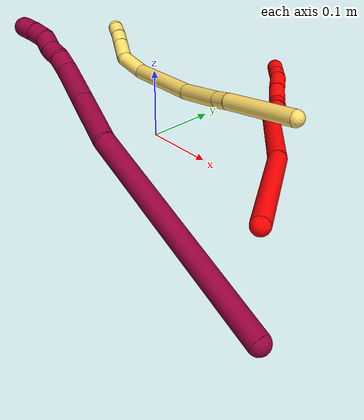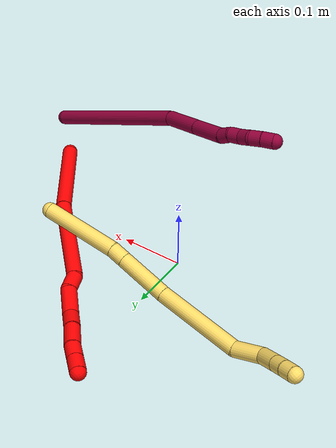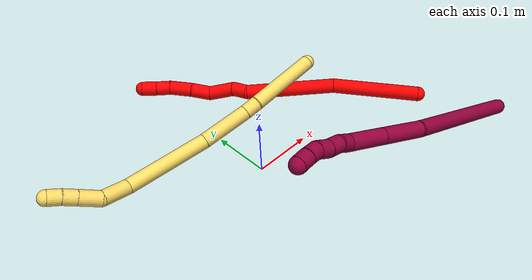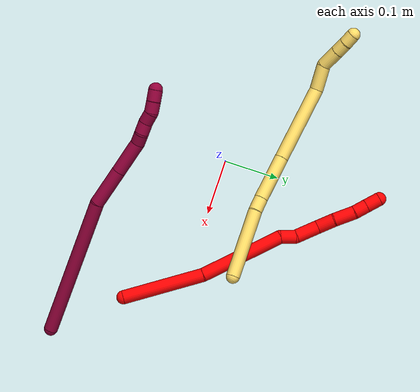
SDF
<sdf version="1.7">
 <world name="default">
  <model name="2">
   <static>0</static>
   <link name="2">
    <collision name="collision-cylinder-e_1_1_4">
     <pose>-0.033554 0.03846 0.053994 -0.618941 -0.46857 0.15233</pose>
     <geometry><cylinder><radius>0.0125</radius><length>0.148599</length></cylinder></geometry>
     <surface>
      <friction><ode><mu>1.16</mu><mu2>1.16</mu2><slip1>0</slip1><slip2>0</slip2></ode></friction>
      <contact><ode><kp>1e+06</kp><kd>1</kd><max_vel>0</max_vel><min_depth>0.001</min_depth></ode></contact>
     </surface>
    </collision>
    <visual name="visual-cylinder-e_1_1_4">
     <pose>-0.033554 0.03846 0.053994 -0.618941 -0.46857 0.15233</pose>
     <geometry><cylinder><radius>0.0125</radius><length>0.148599</length></cylinder></geometry>
     <material><ambient>1 0 0 1</ambient></material>
    </visual>
    <collision name="collision-cylinder-e_2_4_5">
     <pose>-0.099457 0.129042 0.155318 -0.833537 -0.4307 0.193073</pose>
     <geometry><cylinder><radius>0.0125</radius><length>0.154961</length></cylinder></geometry>
     <surface>
      <friction><ode><mu>1.16</mu><mu2>1.16</mu2><slip1>0</slip1><slip2>0</slip2></ode></friction>
      <contact><ode><kp>1e+06</kp><kd>1</kd><max_vel>0</max_vel><min_depth>0.001</min_depth></ode></contact>
     </surface>
    </collision>
    <visual name="visual-cylinder-e_2_4_5">
     <pose>-0.099457 0.129042 0.155318 -0.833537 -0.4307 0.193073</pose>
     <geometry><cylinder><radius>0.0125</radius><length>0.154961</length></cylinder></geometry>
     <material><ambient>1 0 0 1</ambient></material>
    </visual>
    <collision name="collision-cylinder-e_3_5_6">
     <pose>-0.136293 0.185952 0.215072 -0.367914 -0.325043 0.060997</pose>
     <geometry><cylinder><radius>0.0125</radius><length>0.028102</length></cylinder></geometry>
     <surface>
      <friction><ode><mu>1.16</mu><mu2>1.16</mu2><slip1>0</slip1><slip2>0</slip2></ode></friction>
      <contact><ode><kp>1e+06</kp><kd>1</kd><max_vel>0</max_vel><min_depth>0.001</min_depth></ode></contact>
     </surface>
    </collision>
    <visual name="visual-cylinder-e_3_5_6">
     <pose>-0.136293 0.185952 0.215072 -0.367914 -0.325043 0.060997</pose>
     <geometry><cylinder><radius>0.0125</radius><length>0.028102</length></cylinder></geometry>
     <material><ambient>1 0 0 1</ambient></material>
    </visual>
    <collision name="collision-cylinder-e_4_6_7">
     <pose>-0.14634 0.206564 0.242648 -0.807063 -0.248538 0.106565</pose>
     <geometry><cylinder><radius>0.0125</radius><length>0.045203</length></cylinder></geometry>
     <surface>
      <friction><ode><mu>1.16</mu><mu2>1.16</mu2><slip1>0</slip1><slip2>0</slip2></ode></friction>
      <contact><ode><kp>1e+06</kp><kd>1</kd><max_vel>0</max_vel><min_depth>0.001</min_depth></ode></contact>
     </surface>
    </collision>
    <visual name="visual-cylinder-e_4_6_7">
     <pose>-0.14634 0.206564 0.242648 -0.807063 -0.248538 0.106565</pose>
     <geometry><cylinder><radius>0.0125</radius><length>0.045203</length></cylinder></geometry>
     <material><ambient>1 0 0 1</ambient></material>
    </visual>
    <collision name="collision-cylinder-e_5_7_8">
     <pose>-0.163159 0.23093 0.267495 -0.7223 -0.716738 0.281076</pose>
     <geometry><cylinder><radius>0.0125</radius><length>0.034279</length></cylinder></geometry>
     <surface>
      <friction><ode><mu>1.16</mu><mu2>1.16</mu2><slip1>0</slip1><slip2>0</slip2></ode></friction>
      <contact><ode><kp>1e+06</kp><kd>1</kd><max_vel>0</max_vel><min_depth>0.001</min_depth></ode></contact>
     </surface>
    </collision>
    <visual name="visual-cylinder-e_5_7_8">
     <pose>-0.163159 0.23093 0.267495 -0.7223 -0.716738 0.281076</pose>
     <geometry><cylinder><radius>0.0125</radius><length>0.034279</length></cylinder></geometry>
     <material><ambient>1 0 0 1</ambient></material>
    </visual>
    <collision name="collision-cylinder-e_6_8_9">
     <pose>-0.184611 0.249858 0.289684 -0.693451 -0.560295 0.207171</pose>
     <geometry><cylinder><radius>0.0125</radius><length>0.038356</length></cylinder></geometry>
     <surface>
      <friction><ode><mu>1.16</mu><mu2>1.16</mu2><slip1>0</slip1><slip2>0</slip2></ode></friction>
      <contact><ode><kp>1e+06</kp><kd>1</kd><max_vel>0</max_vel><min_depth>0.001</min_depth></ode></contact>
     </surface>
    </collision>
    <visual name="visual-cylinder-e_6_8_9">
     <pose>-0.184611 0.249858 0.289684 -0.693451 -0.560295 0.207171</pose>
     <geometry><cylinder><radius>0.0125</radius><length>0.038356</length></cylinder></geometry>
     <material><ambient>1 0 0 1</ambient></material>
    </visual>
    <collision name="collision-cylinder-e_7_9_10">
     <pose>-0.20051 0.268487 0.309075 -0.874193 -0.488063 0.231638</pose>
     <geometry><cylinder><radius>0.0125</radius><length>0.024342</length></cylinder></geometry>
     <surface>
      <friction><ode><mu>1.16</mu><mu2>1.16</mu2><slip1>0</slip1><slip2>0</slip2></ode></friction>
      <contact><ode><kp>1e+06</kp><kd>1</kd><max_vel>0</max_vel><min_depth>0.001</min_depth></ode></contact>
     </surface>
    </collision>
    <visual name="visual-cylinder-e_7_9_10">
     <pose>-0.20051 0.268487 0.309075 -0.874193 -0.488063 0.231638</pose>
     <geometry><cylinder><radius>0.0125</radius><length>0.024342</length></cylinder></geometry>
     <material><ambient>1 0 0 1</ambient></material>
    </visual>
    <collision name="collision-cylinder-e_8_10_2">
     <pose>-0.212886 0.285257 0.323315 -0.859795 -0.535092 0.250053</pose>
     <geometry><cylinder><radius>0.0125</radius><length>0.026157</length></cylinder></geometry>
     <surface>
      <friction><ode><mu>1.16</mu><mu2>1.16</mu2><slip1>0</slip1><slip2>0</slip2></ode></friction>
      <contact><ode><kp>1e+06</kp><kd>1</kd><max_vel>0</max_vel><min_depth>0.001</min_depth></ode></contact>
     </surface>
    </collision>
    <visual name="visual-cylinder-e_8_10_2">
     <pose>-0.212886 0.285257 0.323315 -0.859795 -0.535092 0.250053</pose>
     <geometry><cylinder><radius>0.0125</radius><length>0.026157</length></cylinder></geometry>
     <material><ambient>1 0 0 1</ambient></material>
    </visual>
    <collision name="collision-sphere-2">
     <pose>-0.219555 0.293782 0.330656 0 -0 0</pose>
     <geometry><sphere><radius>0.0125</radius></sphere></geometry>
     <surface>
      <friction><ode><mu>1.16</mu><mu2>1.16</mu2><slip1>0</slip1><slip2>0</slip2></ode></friction>
      <contact><ode><kp>1e+06</kp><kd>1</kd><max_vel>0</max_vel><min_depth>0.001</min_depth></ode></contact>
     </surface>
    </collision>
    <visual name="visual-sphere-2">
     <pose>-0.219555 0.293782 0.330656 0 -0 0</pose>
     <geometry><sphere><radius>0.0125</radius></sphere></geometry>
     <material><ambient>1 0 0 1</ambient></material>
    </visual>
    <collision name="collision-sphere-10">
     <pose>-0.206217 0.276733 0.315973 0 -0 0</pose>
     <geometry><sphere><radius>0.0125</radius></sphere></geometry>
     <surface>
      <friction><ode><mu>1.16</mu><mu2>1.16</mu2><slip1>0</slip1><slip2>0</slip2></ode></friction>
      <contact><ode><kp>1e+06</kp><kd>1</kd><max_vel>0</max_vel><min_depth>0.001</min_depth></ode></contact>
     </surface>
    </collision>
    <visual name="visual-sphere-10">
     <pose>-0.206217 0.276733 0.315973 0 -0 0</pose>
     <geometry><sphere><radius>0.0125</radius></sphere></geometry>
     <material><ambient>1 0 0 1</ambient></material>
    </visual>
    <collision name="collision-sphere-9">
     <pose>-0.194803 0.260242 0.302178 0 -0 0</pose>
     <geometry><sphere><radius>0.0125</radius></sphere></geometry>
     <surface>
      <friction><ode><mu>1.16</mu><mu2>1.16</mu2><slip1>0</slip1><slip2>0</slip2></ode></friction>
      <contact><ode><kp>1e+06</kp><kd>1</kd><max_vel>0</max_vel><min_depth>0.001</min_depth></ode></contact>
     </surface>
    </collision>
    <visual name="visual-sphere-9">
     <pose>-0.194803 0.260242 0.302178 0 -0 0</pose>
     <geometry><sphere><radius>0.0125</radius></sphere></geometry>
     <material><ambient>1 0 0 1</ambient></material>
    </visual>
    <collision name="collision-sphere-4">
     <pose>-0.067109 0.076921 0.107987 0 -0 0</pose>
     <geometry><sphere><radius>0.0125</radius></sphere></geometry>
     <surface>
      <friction><ode><mu>1.16</mu><mu2>1.16</mu2><slip1>0</slip1><slip2>0</slip2></ode></friction>
      <contact><ode><kp>1e+06</kp><kd>1</kd><max_vel>0</max_vel><min_depth>0.001</min_depth></ode></contact>
     </surface>
    </collision>
    <visual name="visual-sphere-4">
     <pose>-0.067109 0.076921 0.107987 0 -0 0</pose>
     <geometry><sphere><radius>0.0125</radius></sphere></geometry>
     <material><ambient>1 0 0 1</ambient></material>
    </visual>
    <collision name="collision-sphere-1">
     <geometry><sphere><radius>0.0125</radius></sphere></geometry>
     <surface>
      <friction><ode><mu>1.16</mu><mu2>1.16</mu2><slip1>0</slip1><slip2>0</slip2></ode></friction>
      <contact><ode><kp>1e+06</kp><kd>1</kd><max_vel>0</max_vel><min_depth>0.001</min_depth></ode></contact>
     </surface>
    </collision>
    <visual name="visual-sphere-1">
     <geometry><sphere><radius>0.0125</radius></sphere></geometry>
     <material><ambient>1 0 0 1</ambient></material>
    </visual>
    <collision name="collision-sphere-8">
     <pose>-0.174419 0.239473 0.27719 0 -0 0</pose>
     <geometry><sphere><radius>0.0125</radius></sphere></geometry>
     <surface>
      <friction><ode><mu>1.16</mu><mu2>1.16</mu2><slip1>0</slip1><slip2>0</slip2></ode></friction>
      <contact><ode><kp>1e+06</kp><kd>1</kd><max_vel>0</max_vel><min_depth>0.001</min_depth></ode></contact>
     </surface>
    </collision>
    <visual name="visual-sphere-8">
     <pose>-0.174419 0.239473 0.27719 0 -0 0</pose>
     <geometry><sphere><radius>0.0125</radius></sphere></geometry>
     <material><ambient>1 0 0 1</ambient></material>
    </visual>
    <collision name="collision-sphere-5">
     <pose>-0.131806 0.181163 0.202648 0 -0 0</pose>
     <geometry><sphere><radius>0.0125</radius></sphere></geometry>
     <surface>
      <friction><ode><mu>1.16</mu><mu2>1.16</mu2><slip1>0</slip1><slip2>0</slip2></ode></friction>
      <contact><ode><kp>1e+06</kp><kd>1</kd><max_vel>0</max_vel><min_depth>0.001</min_depth></ode></contact>
     </surface>
    </collision>
    <visual name="visual-sphere-5">
     <pose>-0.131806 0.181163 0.202648 0 -0 0</pose>
     <geometry><sphere><radius>0.0125</radius></sphere></geometry>
     <material><ambient>1 0 0 1</ambient></material>
    </visual>
    <collision name="collision-sphere-6">
     <pose>-0.14078 0.190742 0.227496 0 -0 0</pose>
     <geometry><sphere><radius>0.0125</radius></sphere></geometry>
     <surface>
      <friction><ode><mu>1.16</mu><mu2>1.16</mu2><slip1>0</slip1><slip2>0</slip2></ode></friction>
      <contact><ode><kp>1e+06</kp><kd>1</kd><max_vel>0</max_vel><min_depth>0.001</min_depth></ode></contact>
     </surface>
    </collision>
    <visual name="visual-sphere-6">
     <pose>-0.14078 0.190742 0.227496 0 -0 0</pose>
     <geometry><sphere><radius>0.0125</radius></sphere></geometry>
     <material><ambient>1 0 0 1</ambient></material>
    </visual>
    <collision name="collision-sphere-7">
     <pose>-0.1519 0.222387 0.257799 0 -0 0</pose>
     <geometry><sphere><radius>0.0125</radius></sphere></geometry>
     <surface>
      <friction><ode><mu>1.16</mu><mu2>1.16</mu2><slip1>0</slip1><slip2>0</slip2></ode></friction>
      <contact><ode><kp>1e+06</kp><kd>1</kd><max_vel>0</max_vel><min_depth>0.001</min_depth></ode></contact>
     </surface>
    </collision>
    <visual name="visual-sphere-7">
     <pose>-0.1519 0.222387 0.257799 0 -0 0</pose>
     <geometry><sphere><radius>0.0125</radius></sphere></geometry>
     <material><ambient>1 0 0 1</ambient></material>
    </visual>
    <inertial>
     <pose>-0.107933 0.143543 0.170731 0 -0 0</pose>
     <mass>0.5</mass>
     <inertia>
      <ixx>0.000633</ixx>
      <ixy>0</ixy>
      <ixz>0</ixz>
      <iyy>0.000605</iyy>
      <iyz>0</iyz>
      <izz>-7.8e-05</izz>
     </inertia>
    </inertial>
   </link>
   <pose>0.289587 -0.096994 0.038707 -2.01373 1.03836 -0.529512</pose>
  </model>
  <model name="5">
   <static>0</static>
   <link name="5">
    <collision name="collision-cylinder-e_1_1_4">
     <pose>-0.017721 -0.016489 -0.057275 2.86129 -0.288997 -1.60174</pose>
     <geometry><cylinder><radius>0.0125</radius><length>0.12436</length></cylinder></geometry>
     <surface>
      <friction><ode><mu>1.16</mu><mu2>1.16</mu2><slip1>0</slip1><slip2>0</slip2></ode></friction>
      <contact><ode><kp>1e+06</kp><kd>1</kd><max_vel>0</max_vel><min_depth>0.001</min_depth></ode></contact>
     </surface>
    </collision>
    <visual name="visual-cylinder-e_1_1_4">
     <pose>-0.017721 -0.016489 -0.057275 2.86129 -0.288997 -1.60174</pose>
     <geometry><cylinder><radius>0.0125</radius><length>0.12436</length></cylinder></geometry>
     <material><ambient>1 0.858824 0.4 1</ambient></material>
    </visual>
    <collision name="collision-cylinder-e_2_4_5">
     <pose>-0.0383 -0.034584 -0.126758 3.01073 -0.228135 -2.10249</pose>
     <geometry><cylinder><radius>0.0125</radius><length>0.025281</length></cylinder></geometry>
     <surface>
      <friction><ode><mu>1.16</mu><mu2>1.16</mu2><slip1>0</slip1><slip2>0</slip2></ode></friction>
      <contact><ode><kp>1e+06</kp><kd>1</kd><max_vel>0</max_vel><min_depth>0.001</min_depth></ode></contact>
     </surface>
    </collision>
    <visual name="visual-cylinder-e_2_4_5">
     <pose>-0.0383 -0.034584 -0.126758 3.01073 -0.228135 -2.10249</pose>
     <geometry><cylinder><radius>0.0125</radius><length>0.025281</length></cylinder></geometry>
     <material><ambient>1 0.858824 0.4 1</ambient></material>
    </visual>
    <collision name="collision-cylinder-e_3_5_6">
     <pose>-0.052786 -0.040963 -0.178895 3.02264 -0.281468 -2.34578</pose>
     <geometry><cylinder><radius>0.0125</radius><length>0.08372</length></cylinder></geometry>
     <surface>
      <friction><ode><mu>1.16</mu><mu2>1.16</mu2><slip1>0</slip1><slip2>0</slip2></ode></friction>
      <contact><ode><kp>1e+06</kp><kd>1</kd><max_vel>0</max_vel><min_depth>0.001</min_depth></ode></contact>
     </surface>
    </collision>
    <visual name="visual-cylinder-e_3_5_6">
     <pose>-0.052786 -0.040963 -0.178895 3.02264 -0.281468 -2.34578</pose>
     <geometry><cylinder><radius>0.0125</radius><length>0.08372</length></cylinder></geometry>
     <material><ambient>1 0.858824 0.4 1</ambient></material>
    </visual>
    <collision name="collision-cylinder-e_4_6_7">
     <pose>-0.091112 -0.056127 -0.283054 2.9812 -0.389378 -2.36757</pose>
     <geometry><cylinder><radius>0.0125</radius><length>0.14066</length></cylinder></geometry>
     <surface>
      <friction><ode><mu>1.16</mu><mu2>1.16</mu2><slip1>0</slip1><slip2>0</slip2></ode></friction>
      <contact><ode><kp>1e+06</kp><kd>1</kd><max_vel>0</max_vel><min_depth>0.001</min_depth></ode></contact>
     </surface>
    </collision>
    <visual name="visual-cylinder-e_4_6_7">
     <pose>-0.091112 -0.056127 -0.283054 2.9812 -0.389378 -2.36757</pose>
     <geometry><cylinder><radius>0.0125</radius><length>0.14066</length></cylinder></geometry>
     <material><ambient>1 0.858824 0.4 1</ambient></material>
    </visual>
    <collision name="collision-cylinder-e_5_7_8">
     <pose>-0.131619 -0.076289 -0.363525 2.59995 -0.629621 -1.72958</pose>
     <geometry><cylinder><radius>0.0125</radius><length>0.0469</length></cylinder></geometry>
     <surface>
      <friction><ode><mu>1.16</mu><mu2>1.16</mu2><slip1>0</slip1><slip2>0</slip2></ode></friction>
      <contact><ode><kp>1e+06</kp><kd>1</kd><max_vel>0</max_vel><min_depth>0.001</min_depth></ode></contact>
     </surface>
    </collision>
    <visual name="visual-cylinder-e_5_7_8">
     <pose>-0.131619 -0.076289 -0.363525 2.59995 -0.629621 -1.72958</pose>
     <geometry><cylinder><radius>0.0125</radius><length>0.0469</length></cylinder></geometry>
     <material><ambient>1 0.858824 0.4 1</ambient></material>
    </visual>
    <collision name="collision-cylinder-e_6_8_9">
     <pose>-0.160582 -0.086172 -0.389266 3.12989 -1.01082 -3.12045</pose>
     <geometry><cylinder><radius>0.0125</radius><length>0.035773</length></cylinder></geometry>
     <surface>
      <friction><ode><mu>1.16</mu><mu2>1.16</mu2><slip1>0</slip1><slip2>0</slip2></ode></friction>
      <contact><ode><kp>1e+06</kp><kd>1</kd><max_vel>0</max_vel><min_depth>0.001</min_depth></ode></contact>
     </surface>
    </collision>
    <visual name="visual-cylinder-e_6_8_9">
     <pose>-0.160582 -0.086172 -0.389266 3.12989 -1.01082 -3.12045</pose>
     <geometry><cylinder><radius>0.0125</radius><length>0.035773</length></cylinder></geometry>
     <material><ambient>1 0.858824 0.4 1</ambient></material>
    </visual>
    <collision name="collision-cylinder-e_7_9_10">
     <pose>-0.185062 -0.086285 -0.404727 3.14128 -1.002 -3.14102</pose>
     <geometry><cylinder><radius>0.0125</radius><length>0.022136</length></cylinder></geometry>
     <surface>
      <friction><ode><mu>1.16</mu><mu2>1.16</mu2><slip1>0</slip1><slip2>0</slip2></ode></friction>
      <contact><ode><kp>1e+06</kp><kd>1</kd><max_vel>0</max_vel><min_depth>0.001</min_depth></ode></contact>
     </surface>
    </collision>
    <visual name="visual-cylinder-e_7_9_10">
     <pose>-0.185062 -0.086285 -0.404727 3.14128 -1.002 -3.14102</pose>
     <geometry><cylinder><radius>0.0125</radius><length>0.022136</length></cylinder></geometry>
     <material><ambient>1 0.858824 0.4 1</ambient></material>
    </visual>
    <collision name="collision-cylinder-e_8_10_2">
     <pose>-0.202642 -0.086598 -0.417306 3.09455 -0.894568 -3.0436</pose>
     <geometry><cylinder><radius>0.0125</radius><length>0.021169</length></cylinder></geometry>
     <surface>
      <friction><ode><mu>1.16</mu><mu2>1.16</mu2><slip1>0</slip1><slip2>0</slip2></ode></friction>
      <contact><ode><kp>1e+06</kp><kd>1</kd><max_vel>0</max_vel><min_depth>0.001</min_depth></ode></contact>
     </surface>
    </collision>
    <visual name="visual-cylinder-e_8_10_2">
     <pose>-0.202642 -0.086598 -0.417306 3.09455 -0.894568 -3.0436</pose>
     <geometry><cylinder><radius>0.0125</radius><length>0.021169</length></cylinder></geometry>
     <material><ambient>1 0.858824 0.4 1</ambient></material>
    </visual>
    <collision name="collision-sphere-2">
     <pose>-0.210897 -0.08691 -0.423923 0 -0 0</pose>
     <geometry><sphere><radius>0.0125</radius></sphere></geometry>
     <surface>
      <friction><ode><mu>1.16</mu><mu2>1.16</mu2><slip1>0</slip1><slip2>0</slip2></ode></friction>
      <contact><ode><kp>1e+06</kp><kd>1</kd><max_vel>0</max_vel><min_depth>0.001</min_depth></ode></contact>
     </surface>
    </collision>
    <visual name="visual-sphere-2">
     <pose>-0.210897 -0.08691 -0.423923 0 -0 0</pose>
     <geometry><sphere><radius>0.0125</radius></sphere></geometry>
     <material><ambient>1 0.858824 0.4 1</ambient></material>
    </visual>
    <collision name="collision-sphere-10">
     <pose>-0.194387 -0.086287 -0.410689 0 -0 0</pose>
     <geometry><sphere><radius>0.0125</radius></sphere></geometry>
     <surface>
      <friction><ode><mu>1.16</mu><mu2>1.16</mu2><slip1>0</slip1><slip2>0</slip2></ode></friction>
      <contact><ode><kp>1e+06</kp><kd>1</kd><max_vel>0</max_vel><min_depth>0.001</min_depth></ode></contact>
     </surface>
    </collision>
    <visual name="visual-sphere-10">
     <pose>-0.194387 -0.086287 -0.410689 0 -0 0</pose>
     <geometry><sphere><radius>0.0125</radius></sphere></geometry>
     <material><ambient>1 0.858824 0.4 1</ambient></material>
    </visual>
    <collision name="collision-sphere-9">
     <pose>-0.175736 -0.086283 -0.398766 0 -0 0</pose>
     <geometry><sphere><radius>0.0125</radius></sphere></geometry>
     <surface>
      <friction><ode><mu>1.16</mu><mu2>1.16</mu2><slip1>0</slip1><slip2>0</slip2></ode></friction>
      <contact><ode><kp>1e+06</kp><kd>1</kd><max_vel>0</max_vel><min_depth>0.001</min_depth></ode></contact>
     </surface>
    </collision>
    <visual name="visual-sphere-9">
     <pose>-0.175736 -0.086283 -0.398766 0 -0 0</pose>
     <geometry><sphere><radius>0.0125</radius></sphere></geometry>
     <material><ambient>1 0.858824 0.4 1</ambient></material>
    </visual>
    <collision name="collision-sphere-4">
     <pose>-0.035442 -0.032977 -0.114551 0 -0 0</pose>
     <geometry><sphere><radius>0.0125</radius></sphere></geometry>
     <surface>
      <friction><ode><mu>1.16</mu><mu2>1.16</mu2><slip1>0</slip1><slip2>0</slip2></ode></friction>
      <contact><ode><kp>1e+06</kp><kd>1</kd><max_vel>0</max_vel><min_depth>0.001</min_depth></ode></contact>
     </surface>
    </collision>
    <visual name="visual-sphere-4">
     <pose>-0.035442 -0.032977 -0.114551 0 -0 0</pose>
     <geometry><sphere><radius>0.0125</radius></sphere></geometry>
     <material><ambient>1 0.858824 0.4 1</ambient></material>
    </visual>
    <collision name="collision-sphere-1">
     <geometry><sphere><radius>0.0125</radius></sphere></geometry>
     <surface>
      <friction><ode><mu>1.16</mu><mu2>1.16</mu2><slip1>0</slip1><slip2>0</slip2></ode></friction>
      <contact><ode><kp>1e+06</kp><kd>1</kd><max_vel>0</max_vel><min_depth>0.001</min_depth></ode></contact>
     </surface>
    </collision>
    <visual name="visual-sphere-1">
     <geometry><sphere><radius>0.0125</radius></sphere></geometry>
     <material><ambient>1 0.858824 0.4 1</ambient></material>
    </visual>
    <collision name="collision-sphere-8">
     <pose>-0.145427 -0.086061 -0.379766 0 -0 0</pose>
     <geometry><sphere><radius>0.0125</radius></sphere></geometry>
     <surface>
      <friction><ode><mu>1.16</mu><mu2>1.16</mu2><slip1>0</slip1><slip2>0</slip2></ode></friction>
      <contact><ode><kp>1e+06</kp><kd>1</kd><max_vel>0</max_vel><min_depth>0.001</min_depth></ode></contact>
     </surface>
    </collision>
    <visual name="visual-sphere-8">
     <pose>-0.145427 -0.086061 -0.379766 0 -0 0</pose>
     <geometry><sphere><radius>0.0125</radius></sphere></geometry>
     <material><ambient>1 0.858824 0.4 1</ambient></material>
    </visual>
    <collision name="collision-sphere-5">
     <pose>-0.041159 -0.036191 -0.138966 0 -0 0</pose>
     <geometry><sphere><radius>0.0125</radius></sphere></geometry>
     <surface>
      <friction><ode><mu>1.16</mu><mu2>1.16</mu2><slip1>0</slip1><slip2>0</slip2></ode></friction>
      <contact><ode><kp>1e+06</kp><kd>1</kd><max_vel>0</max_vel><min_depth>0.001</min_depth></ode></contact>
     </surface>
    </collision>
    <visual name="visual-sphere-5">
     <pose>-0.041159 -0.036191 -0.138966 0 -0 0</pose>
     <geometry><sphere><radius>0.0125</radius></sphere></geometry>
     <material><ambient>1 0.858824 0.4 1</ambient></material>
    </visual>
    <collision name="collision-sphere-6">
     <pose>-0.064414 -0.045735 -0.218823 0 -0 0</pose>
     <geometry><sphere><radius>0.0125</radius></sphere></geometry>
     <surface>
      <friction><ode><mu>1.16</mu><mu2>1.16</mu2><slip1>0</slip1><slip2>0</slip2></ode></friction>
      <contact><ode><kp>1e+06</kp><kd>1</kd><max_vel>0</max_vel><min_depth>0.001</min_depth></ode></contact>
     </surface>
    </collision>
    <visual name="visual-sphere-6">
     <pose>-0.064414 -0.045735 -0.218823 0 -0 0</pose>
     <geometry><sphere><radius>0.0125</radius></sphere></geometry>
     <material><ambient>1 0.858824 0.4 1</ambient></material>
    </visual>
    <collision name="collision-sphere-7">
     <pose>-0.11781 -0.066518 -0.347285 0 -0 0</pose>
     <geometry><sphere><radius>0.0125</radius></sphere></geometry>
     <surface>
      <friction><ode><mu>1.16</mu><mu2>1.16</mu2><slip1>0</slip1><slip2>0</slip2></ode></friction>
      <contact><ode><kp>1e+06</kp><kd>1</kd><max_vel>0</max_vel><min_depth>0.001</min_depth></ode></contact>
     </surface>
    </collision>
    <visual name="visual-sphere-7">
     <pose>-0.11781 -0.066518 -0.347285 0 -0 0</pose>
     <geometry><sphere><radius>0.0125</radius></sphere></geometry>
     <material><ambient>1 0.858824 0.4 1</ambient></material>
    </visual>
    <inertial>
     <pose>-0.081422 -0.049306 -0.227773 0 -0 0</pose>
     <mass>0.5</mass>
     <inertia>
      <ixx>-0.000579</ixx>
      <ixy>0</ixy>
      <ixz>0</ixz>
      <iyy>-0.000117</iyy>
      <iyz>0</iyz>
      <izz>0.000222</izz>
     </inertia>
    </inertial>
   </link>
   <pose>0.191077 0.077155 0.071917 -0.505027 0.961006 -0.768798</pose>
  </model>
  <model name="8">
   <static>0</static>
   <link name="8">
    <collision name="collision-cylinder-e_1_1_4">
     <pose>-0.013334 0.020431 0.131188 -0.154499 -0.100094 0.007754</pose>
     <geometry><cylinder><radius>0.0125</radius><length>0.266874</length></cylinder></geometry>
     <surface>
      <friction><ode><mu>1.16</mu><mu2>1.16</mu2><slip1>0</slip1><slip2>0</slip2></ode></friction>
      <contact><ode><kp>1e+06</kp><kd>1</kd><max_vel>0</max_vel><min_depth>0.001</min_depth></ode></contact>
     </surface>
    </collision>
    <visual name="visual-cylinder-e_1_1_4">
     <pose>-0.013334 0.020431 0.131188 -0.154499 -0.100094 0.007754</pose>
     <geometry><cylinder><radius>0.0125</radius><length>0.266874</length></cylinder></geometry>
     <material><ambient>0.584314 0 0.227451 1</ambient></material>
    </visual>
    <collision name="collision-cylinder-e_2_4_5">
     <pose>-0.03885 0.047038 0.294738 -0.188555 -0.354171 0.033841</pose>
     <geometry><cylinder><radius>0.0125</radius><length>0.070253</length></cylinder></geometry>
     <surface>
      <friction><ode><mu>1.16</mu><mu2>1.16</mu2><slip1>0</slip1><slip2>0</slip2></ode></friction>
      <contact><ode><kp>1e+06</kp><kd>1</kd><max_vel>0</max_vel><min_depth>0.001</min_depth></ode></contact>
     </surface>
    </collision>
    <visual name="visual-cylinder-e_2_4_5">
     <pose>-0.03885 0.047038 0.294738 -0.188555 -0.354171 0.033841</pose>
     <geometry><cylinder><radius>0.0125</radius><length>0.070253</length></cylinder></geometry>
     <material><ambient>0.584314 0 0.227451 1</ambient></material>
    </visual>
    <collision name="collision-cylinder-e_3_5_6">
     <pose>-0.061486 0.058547 0.355158 -0.187851 -0.350863 0.033392</pose>
     <geometry><cylinder><radius>0.0125</radius><length>0.060827</length></cylinder></geometry>
     <surface>
      <friction><ode><mu>1.16</mu><mu2>1.16</mu2><slip1>0</slip1><slip2>0</slip2></ode></friction>
      <contact><ode><kp>1e+06</kp><kd>1</kd><max_vel>0</max_vel><min_depth>0.001</min_depth></ode></contact>
     </surface>
    </collision>
    <visual name="visual-cylinder-e_3_5_6">
     <pose>-0.061486 0.058547 0.355158 -0.187851 -0.350863 0.033392</pose>
     <geometry><cylinder><radius>0.0125</radius><length>0.060827</length></cylinder></geometry>
     <material><ambient>0.584314 0 0.227451 1</ambient></material>
    </visual>
    <collision name="collision-cylinder-e_4_6_7">
     <pose>-0.072313 0.066672 0.39309 -0.275565 -0.036369 0.005044</pose>
     <geometry><cylinder><radius>0.0125</radius><length>0.020535</length></cylinder></geometry>
     <surface>
      <friction><ode><mu>1.16</mu><mu2>1.16</mu2><slip1>0</slip1><slip2>0</slip2></ode></friction>
      <contact><ode><kp>1e+06</kp><kd>1</kd><max_vel>0</max_vel><min_depth>0.001</min_depth></ode></contact>
     </surface>
    </collision>
    <visual name="visual-cylinder-e_4_6_7">
     <pose>-0.072313 0.066672 0.39309 -0.275565 -0.036369 0.005044</pose>
     <geometry><cylinder><radius>0.0125</radius><length>0.020535</length></cylinder></geometry>
     <material><ambient>0.584314 0 0.227451 1</ambient></material>
    </visual>
    <collision name="collision-cylinder-e_5_7_8">
     <pose>-0.074737 0.069508 0.413053 -0.004402 -0.20056 0.000443</pose>
     <geometry><cylinder><radius>0.0125</radius><length>0.020594</length></cylinder></geometry>
     <surface>
      <friction><ode><mu>1.16</mu><mu2>1.16</mu2><slip1>0</slip1><slip2>0</slip2></ode></friction>
      <contact><ode><kp>1e+06</kp><kd>1</kd><max_vel>0</max_vel><min_depth>0.001</min_depth></ode></contact>
     </surface>
    </collision>
    <visual name="visual-cylinder-e_5_7_8">
     <pose>-0.074737 0.069508 0.413053 -0.004402 -0.20056 0.000443</pose>
     <geometry><cylinder><radius>0.0125</radius><length>0.020594</length></cylinder></geometry>
     <material><ambient>0.584314 0 0.227451 1</ambient></material>
    </visual>
    <collision name="collision-cylinder-e_6_8_9">
     <pose>-0.078952 0.07221 0.432987 -0.263694 -0.209105 0.02783</pose>
     <geometry><cylinder><radius>0.0125</radius><length>0.020846</length></cylinder></geometry>
     <surface>
      <friction><ode><mu>1.16</mu><mu2>1.16</mu2><slip1>0</slip1><slip2>0</slip2></ode></friction>
      <contact><ode><kp>1e+06</kp><kd>1</kd><max_vel>0</max_vel><min_depth>0.001</min_depth></ode></contact>
     </surface>
    </collision>
    <visual name="visual-cylinder-e_6_8_9">
     <pose>-0.078952 0.07221 0.432987 -0.263694 -0.209105 0.02783</pose>
     <geometry><cylinder><radius>0.0125</radius><length>0.020846</length></cylinder></geometry>
     <material><ambient>0.584314 0 0.227451 1</ambient></material>
    </visual>
    <collision name="collision-cylinder-e_7_9_10">
     <pose>-0.081834 0.073837 0.452779 0.103289 -0.071704 -0.003708</pose>
     <geometry><cylinder><radius>0.0125</radius><length>0.020055</length></cylinder></geometry>
     <surface>
      <friction><ode><mu>1.16</mu><mu2>1.16</mu2><slip1>0</slip1><slip2>0</slip2></ode></friction>
      <contact><ode><kp>1e+06</kp><kd>1</kd><max_vel>0</max_vel><min_depth>0.001</min_depth></ode></contact>
     </surface>
    </collision>
    <visual name="visual-cylinder-e_7_9_10">
     <pose>-0.081834 0.073837 0.452779 0.103289 -0.071704 -0.003708</pose>
     <geometry><cylinder><radius>0.0125</radius><length>0.020055</length></cylinder></geometry>
     <material><ambient>0.584314 0 0.227451 1</ambient></material>
    </visual>
    <collision name="collision-cylinder-e_8_10_2">
     <pose>-0.083529 0.070897 0.472504 0.192826 -0.097738 -0.00946</pose>
     <geometry><cylinder><radius>0.0125</radius><length>0.020017</length></cylinder></geometry>
     <surface>
      <friction><ode><mu>1.16</mu><mu2>1.16</mu2><slip1>0</slip1><slip2>0</slip2></ode></friction>
      <contact><ode><kp>1e+06</kp><kd>1</kd><max_vel>0</max_vel><min_depth>0.001</min_depth></ode></contact>
     </surface>
    </collision>
    <visual name="visual-cylinder-e_8_10_2">
     <pose>-0.083529 0.070897 0.472504 0.192826 -0.097738 -0.00946</pose>
     <geometry><cylinder><radius>0.0125</radius><length>0.020017</length></cylinder></geometry>
     <material><ambient>0.584314 0 0.227451 1</ambient></material>
    </visual>
    <collision name="collision-sphere-2">
     <pose>-0.084506 0.068988 0.48228 0 -0 0</pose>
     <geometry><sphere><radius>0.0125</radius></sphere></geometry>
     <surface>
      <friction><ode><mu>1.16</mu><mu2>1.16</mu2><slip1>0</slip1><slip2>0</slip2></ode></friction>
      <contact><ode><kp>1e+06</kp><kd>1</kd><max_vel>0</max_vel><min_depth>0.001</min_depth></ode></contact>
     </surface>
    </collision>
    <visual name="visual-sphere-2">
     <pose>-0.084506 0.068988 0.48228 0 -0 0</pose>
     <geometry><sphere><radius>0.0125</radius></sphere></geometry>
     <material><ambient>0.584314 0 0.227451 1</ambient></material>
    </visual>
    <collision name="collision-sphere-10">
     <pose>-0.082553 0.072806 0.462728 0 -0 0</pose>
     <geometry><sphere><radius>0.0125</radius></sphere></geometry>
     <surface>
      <friction><ode><mu>1.16</mu><mu2>1.16</mu2><slip1>0</slip1><slip2>0</slip2></ode></friction>
      <contact><ode><kp>1e+06</kp><kd>1</kd><max_vel>0</max_vel><min_depth>0.001</min_depth></ode></contact>
     </surface>
    </collision>
    <visual name="visual-sphere-10">
     <pose>-0.082553 0.072806 0.462728 0 -0 0</pose>
     <geometry><sphere><radius>0.0125</radius></sphere></geometry>
     <material><ambient>0.584314 0 0.227451 1</ambient></material>
    </visual>
    <collision name="collision-sphere-9">
     <pose>-0.081116 0.074868 0.442831 0 -0 0</pose>
     <geometry><sphere><radius>0.0125</radius></sphere></geometry>
     <surface>
      <friction><ode><mu>1.16</mu><mu2>1.16</mu2><slip1>0</slip1><slip2>0</slip2></ode></friction>
      <contact><ode><kp>1e+06</kp><kd>1</kd><max_vel>0</max_vel><min_depth>0.001</min_depth></ode></contact>
     </surface>
    </collision>
    <visual name="visual-sphere-9">
     <pose>-0.081116 0.074868 0.442831 0 -0 0</pose>
     <geometry><sphere><radius>0.0125</radius></sphere></geometry>
     <material><ambient>0.584314 0 0.227451 1</ambient></material>
    </visual>
    <collision name="collision-sphere-4">
     <pose>-0.026668 0.040862 0.262375 0 -0 0</pose>
     <geometry><sphere><radius>0.0125</radius></sphere></geometry>
     <surface>
      <friction><ode><mu>1.16</mu><mu2>1.16</mu2><slip1>0</slip1><slip2>0</slip2></ode></friction>
      <contact><ode><kp>1e+06</kp><kd>1</kd><max_vel>0</max_vel><min_depth>0.001</min_depth></ode></contact>
     </surface>
    </collision>
    <visual name="visual-sphere-4">
     <pose>-0.026668 0.040862 0.262375 0 -0 0</pose>
     <geometry><sphere><radius>0.0125</radius></sphere></geometry>
     <material><ambient>0.584314 0 0.227451 1</ambient></material>
    </visual>
    <collision name="collision-sphere-1">
     <geometry><sphere><radius>0.0125</radius></sphere></geometry>
     <surface>
      <friction><ode><mu>1.16</mu><mu2>1.16</mu2><slip1>0</slip1><slip2>0</slip2></ode></friction>
      <contact><ode><kp>1e+06</kp><kd>1</kd><max_vel>0</max_vel><min_depth>0.001</min_depth></ode></contact>
     </surface>
    </collision>
    <visual name="visual-sphere-1">
     <geometry><sphere><radius>0.0125</radius></sphere></geometry>
     <material><ambient>0.584314 0 0.227451 1</ambient></material>
    </visual>
    <collision name="collision-sphere-8">
     <pose>-0.076789 0.069553 0.423144 0 -0 0</pose>
     <geometry><sphere><radius>0.0125</radius></sphere></geometry>
     <surface>
      <friction><ode><mu>1.16</mu><mu2>1.16</mu2><slip1>0</slip1><slip2>0</slip2></ode></friction>
      <contact><ode><kp>1e+06</kp><kd>1</kd><max_vel>0</max_vel><min_depth>0.001</min_depth></ode></contact>
     </surface>
    </collision>
    <visual name="visual-sphere-8">
     <pose>-0.076789 0.069553 0.423144 0 -0 0</pose>
     <geometry><sphere><radius>0.0125</radius></sphere></geometry>
     <material><ambient>0.584314 0 0.227451 1</ambient></material>
    </visual>
    <collision name="collision-sphere-5">
     <pose>-0.051033 0.053213 0.3271 0 -0 0</pose>
     <geometry><sphere><radius>0.0125</radius></sphere></geometry>
     <surface>
      <friction><ode><mu>1.16</mu><mu2>1.16</mu2><slip1>0</slip1><slip2>0</slip2></ode></friction>
      <contact><ode><kp>1e+06</kp><kd>1</kd><max_vel>0</max_vel><min_depth>0.001</min_depth></ode></contact>
     </surface>
    </collision>
    <visual name="visual-sphere-5">
     <pose>-0.051033 0.053213 0.3271 0 -0 0</pose>
     <geometry><sphere><radius>0.0125</radius></sphere></geometry>
     <material><ambient>0.584314 0 0.227451 1</ambient></material>
    </visual>
    <collision name="collision-sphere-6">
     <pose>-0.071939 0.06388 0.383216 0 -0 0</pose>
     <geometry><sphere><radius>0.0125</radius></sphere></geometry>
     <surface>
      <friction><ode><mu>1.16</mu><mu2>1.16</mu2><slip1>0</slip1><slip2>0</slip2></ode></friction>
      <contact><ode><kp>1e+06</kp><kd>1</kd><max_vel>0</max_vel><min_depth>0.001</min_depth></ode></contact>
     </surface>
    </collision>
    <visual name="visual-sphere-6">
     <pose>-0.071939 0.06388 0.383216 0 -0 0</pose>
     <geometry><sphere><radius>0.0125</radius></sphere></geometry>
     <material><ambient>0.584314 0 0.227451 1</ambient></material>
    </visual>
    <collision name="collision-sphere-7">
     <pose>-0.072686 0.069464 0.402963 0 -0 0</pose>
     <geometry><sphere><radius>0.0125</radius></sphere></geometry>
     <surface>
      <friction><ode><mu>1.16</mu><mu2>1.16</mu2><slip1>0</slip1><slip2>0</slip2></ode></friction>
      <contact><ode><kp>1e+06</kp><kd>1</kd><max_vel>0</max_vel><min_depth>0.001</min_depth></ode></contact>
     </surface>
    </collision>
    <visual name="visual-sphere-7">
     <pose>-0.072686 0.069464 0.402963 0 -0 0</pose>
     <geometry><sphere><radius>0.0125</radius></sphere></geometry>
     <material><ambient>0.584314 0 0.227451 1</ambient></material>
    </visual>
    <inertial>
     <pose>-0.036022 0.039048 0.242926 0 -0 0</pose>
     <mass>0.5</mass>
     <inertia>
      <ixx>0.001651</ixx>
      <ixy>0</ixy>
      <ixz>0</ixz>
      <iyy>0.001654</iyy>
      <iyz>0</iyz>
      <izz>-3.8e-05</izz>
     </inertia>
    </inertial>
   </link>
   <pose>0.386743 -0.204766 0.012326 1.19174 -0.525285 -1.25461</pose>
  </model>
 </world>
</sdf>
